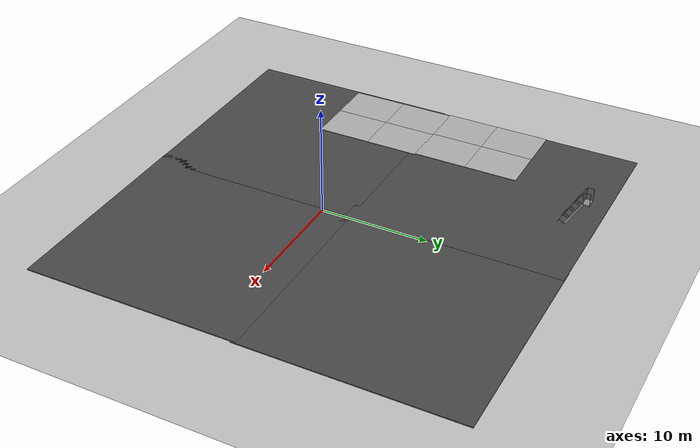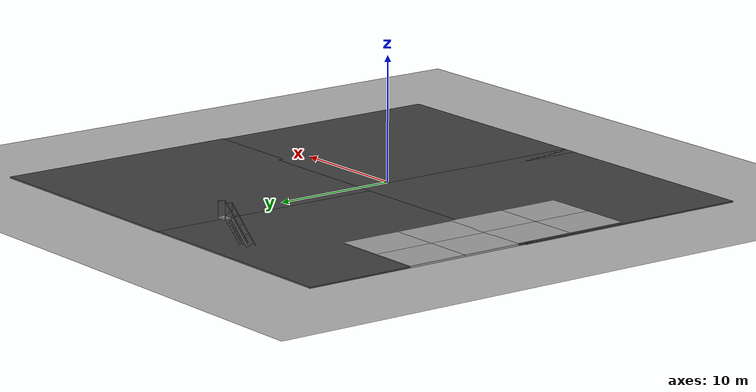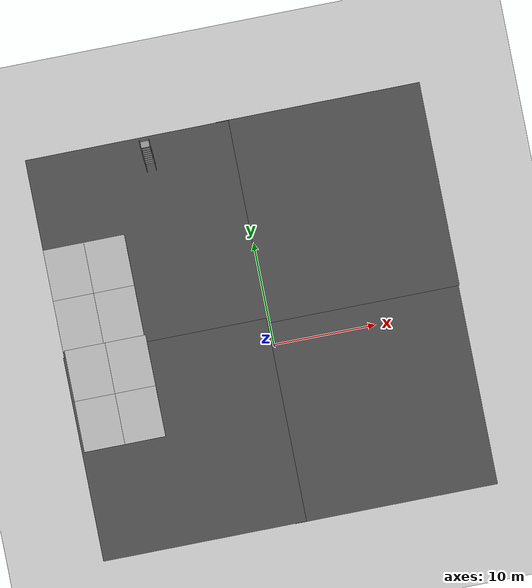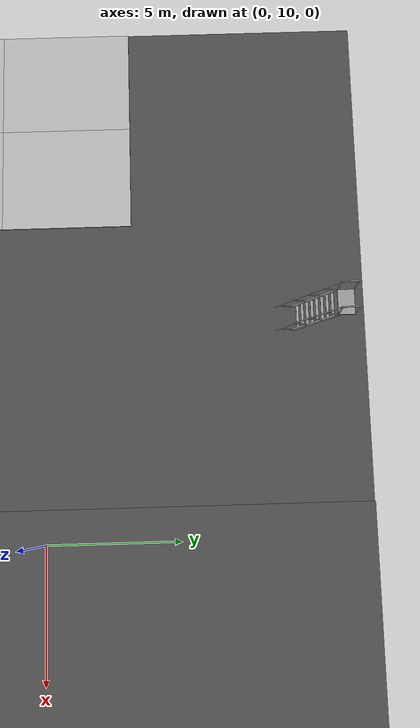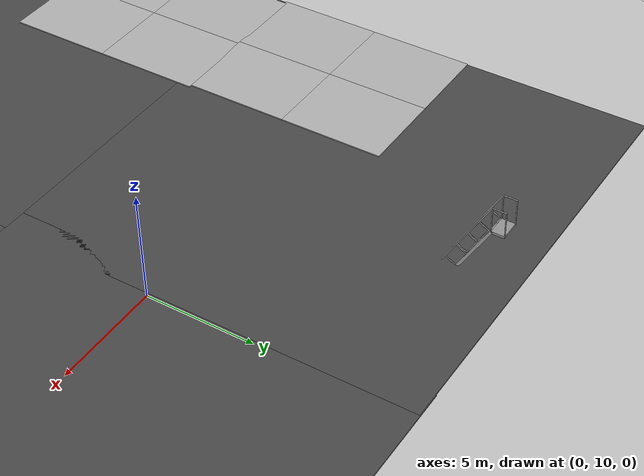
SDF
<sdf version="1.7">
 <world name="default">
  <model name="ground_plane">
   <static>1</static>
   <link name="link">
    <collision name="collision">
     <geometry><plane><normal>0 0 1</normal><size>100 100</size></plane></geometry>
     <surface><friction><ode><mu>100</mu><mu2>50</mu2></ode></friction></surface>
    </collision>
    <visual name="visual">
     <cast_shadows>0</cast_shadows>
     <geometry><plane><normal>0 0 1</normal><size>100 100</size></plane></geometry>
     <material>
      <script><uri>file://media/materials/scripts/gazebo.material</uri><name>Gazebo/Grey</name></script>
     </material>
    </visual>
   </link>
  </model>
  <model name="asphalt_plane">
   <static>1</static>
   <link name="link">
    <collision name="collision">
     <geometry><box><size>20 20 0.1</size></box></geometry>
     <surface><friction><ode><mu>100</mu><mu2>50</mu2></ode></friction></surface>
    </collision>
    <visual name="visual">
     <cast_shadows>0</cast_shadows>
     <geometry><box><size>20 20 0.1</size></box></geometry>
     <material>
      <script>
       <uri>model://asphalt_plane/materials/scripts</uri>
       <uri>model://asphalt_plane/materials/textures</uri>
       <name>vrc/asphalt</name>
      </script>
     </material>
    </visual>
   </link>
   <pose>-10.1941 -7.31872 0 0 -0 0</pose>
  </model>
  <model name="asphalt_plane_clone">
   <static>1</static>
   <link name="link">
    <collision name="collision">
     <geometry><box><size>20 20 0.1</size></box></geometry>
     <surface><friction><ode><mu>100</mu><mu2>50</mu2></ode></friction></surface>
    </collision>
    <visual name="visual">
     <cast_shadows>0</cast_shadows>
     <geometry><box><size>20 20 0.1</size></box></geometry>
     <material>
      <script>
       <uri>model://asphalt_plane/materials/scripts</uri>
       <uri>model://asphalt_plane/materials/textures</uri>
       <name>vrc/asphalt</name>
      </script>
     </material>
    </visual>
   </link>
   <pose>-10.1068 12.1463 0 0 -0 0</pose>
  </model>
  <model name="asphalt_plane_clone_clone">
   <static>1</static>
   <link name="link">
    <collision name="collision">
     <geometry><box><size>20 20 0.1</size></box></geometry>
     <surface><friction><ode><mu>100</mu><mu2>50</mu2></ode></friction></surface>
    </collision>
    <visual name="visual">
     <cast_shadows>0</cast_shadows>
     <geometry><box><size>20 20 0.1</size></box></geometry>
     <material>
      <script>
       <uri>model://asphalt_plane/materials/scripts</uri>
       <uri>model://asphalt_plane/materials/textures</uri>
       <name>vrc/asphalt</name>
      </script>
     </material>
    </visual>
   </link>
   <pose>8.71597 12.1785 0 0 -0 0</pose>
  </model>
  <model name="asphalt_plane_clone_clone_0">
   <static>1</static>
   <link name="link">
    <collision name="collision">
     <geometry><box><size>20 20 0.1</size></box></geometry>
     <surface><friction><ode><mu>100</mu><mu2>50</mu2></ode></friction></surface>
    </collision>
    <visual name="visual">
     <cast_shadows>0</cast_shadows>
     <geometry><box><size>20 20 0.1</size></box></geometry>
     <material>
      <script>
       <uri>model://asphalt_plane/materials/scripts</uri>
       <uri>model://asphalt_plane/materials/textures</uri>
       <name>vrc/asphalt</name>
      </script>
     </material>
    </visual>
   </link>
   <pose>8.60996 -7.34898 0 0 -0 0</pose>
  </model>
  <model name="mud_box">
   <static>1</static>
   <link name="link">
    <collision name="collision"><geometry><box><size>8 10 0.2</size></box></geometry></collision>
    <visual name="visual_1">
     <pose>-2 2.5 0 0 -0 0</pose>
     <cast_shadows>0</cast_shadows>
     <geometry><box><size>4 5 0.2</size></box></geometry>
     <material>
      <script>
       <uri>model://mud_box/materials/scripts</uri>
       <uri>model://mud_box/materials/textures</uri>
       <name>vrc/mud</name>
      </script>
     </material>
    </visual>
    <visual name="visual_2">
     <pose>2 2.5 0 0 -0 0</pose>
     <cast_shadows>0</cast_shadows>
     <geometry><box><size>4 5 0.2</size></box></geometry>
     <material>
      <script>
       <uri>model://mud_box/materials/scripts</uri>
       <uri>model://mud_box/materials/textures</uri>
       <name>vrc/mud</name>
      </script>
     </material>
    </visual>
    <visual name="visual_3">
     <pose>2 -2.5 0 0 -0 0</pose>
     <cast_shadows>0</cast_shadows>
     <geometry><box><size>4 5 0.2</size></box></geometry>
     <material>
      <script>
       <uri>model://mud_box/materials/scripts</uri>
       <uri>model://mud_box/materials/textures</uri>
       <name>vrc/mud</name>
      </script>
     </material>
    </visual>
    <visual name="visual_4">
     <pose>-2 -2.5 0 0 -0 0</pose>
     <cast_shadows>0</cast_shadows>
     <geometry><box><size>4 5 0.2</size></box></geometry>
     <material>
      <script>
       <uri>model://mud_box/materials/scripts</uri>
       <uri>model://mud_box/materials/textures</uri>
       <name>vrc/mud</name>
      </script>
     </material>
    </visual>
   </link>
   <pose>-15.9643 -1.62647 0 0 -0 0</pose>
  </model>
  <model name="mud_box_clone">
   <static>1</static>
   <link name="link">
    <collision name="collision"><geometry><box><size>8 10 0.2</size></box></geometry></collision>
    <visual name="visual_1">
     <pose>-2 2.5 0 0 -0 0</pose>
     <cast_shadows>0</cast_shadows>
     <geometry><box><size>4 5 0.2</size></box></geometry>
     <material>
      <script>
       <uri>model://mud_box/materials/scripts</uri>
       <uri>model://mud_box/materials/textures</uri>
       <name>vrc/mud</name>
      </script>
     </material>
    </visual>
    <visual name="visual_2">
     <pose>2 2.5 0 0 -0 0</pose>
     <cast_shadows>0</cast_shadows>
     <geometry><box><size>4 5 0.2</size></box></geometry>
     <material>
      <script>
       <uri>model://mud_box/materials/scripts</uri>
       <uri>model://mud_box/materials/textures</uri>
       <name>vrc/mud</name>
      </script>
     </material>
    </visual>
    <visual name="visual_3">
     <pose>2 -2.5 0 0 -0 0</pose>
     <cast_shadows>0</cast_shadows>
     <geometry><box><size>4 5 0.2</size></box></geometry>
     <material>
      <script>
       <uri>model://mud_box/materials/scripts</uri>
       <uri>model://mud_box/materials/textures</uri>
       <name>vrc/mud</name>
      </script>
     </material>
    </visual>
    <visual name="visual_4">
     <pose>-2 -2.5 0 0 -0 0</pose>
     <cast_shadows>0</cast_shadows>
     <geometry><box><size>4 5 0.2</size></box></geometry>
     <material>
      <script>
       <uri>model://mud_box/materials/scripts</uri>
       <uri>model://mud_box/materials/textures</uri>
       <name>vrc/mud</name>
      </script>
     </material>
    </visual>
   </link>
   <pose>-16.1069 8.28129 0 0 -0 0</pose>
  </model>
  <light name="sun" type="directional">
   <pose>0 0 10 0 -0 0</pose>
   <diffuse>0.8 0.8 0.8 1</diffuse>
   <specular>0.2 0.2 0.2 1</specular>
   <attenuation>
    <range>1000</range>
    <constant>0.9</constant>
    <linear>0.01</linear>
    <quadratic>0.001</quadratic>
   </attenuation>
   <direction>-0.5 0.1 -0.9</direction>
   <spot><inner_angle>0</inner_angle><outer_angle>0</outer_angle><falloff>0</falloff></spot>
  </light>
  <gravity>0 0 -9.8</gravity>
  <magnetic_field>6e-06 2.3e-05 -4.2e-05</magnetic_field>
  <atmosphere type="adiabatic"/>
  <physics name="default_physics" default="0" type="ode">
   <max_step_size>0.001</max_step_size>
   <real_time_factor>1</real_time_factor>
   <real_time_update_rate>1000</real_time_update_rate>
  </physics>
  <scene><ambient>0.4 0.4 0.4 1</ambient><background>0.7 0.7 0.7 1</background><shadows>1</shadows></scene>
  <audio><device>default</device></audio>
  <spherical_coordinates>
   <surface_model>EARTH_WGS84</surface_model>
   <latitude_deg>47.8406</latitude_deg>
   <longitude_deg>10.6199</longitude_deg>
   <elevation>740</elevation>
   <heading_deg>180</heading_deg>
  </spherical_coordinates>
  <model name="ladder_60deg_2rails">
   <static>1</static>
   <link name="step0">
    <pose>0 0.15396 0.266667 0 -0 0</pose>
    <inertial>
     <mass>9.75482</mass>
     <inertia>
      <ixx>0.00957124</ixx>
      <iyy>0.65963</iyy>
      <izz>0.666842</izz>
      <ixy>0</ixy>
      <ixz>0</ixz>
      <iyz>0</iyz>
     </inertia>
    </inertial>
    <collision name="collision"><geometry><box><size>0.9 0.1016 0.0381</size></box></geometry></collision>
    <visual name="visual">
     <geometry><box><size>0.9 0.1016 0.0381</size></box></geometry>
     <material>
      <script><uri>file://media/materials/scripts/gazebo.material</uri><name>Gazebo/Grey</name></script>
     </material>
    </visual>
   </link>
   <link name="step1">
    <pose>0 0.30792 0.533333 0 -0 0</pose>
    <inertial>
     <mass>9.75482</mass>
     <inertia>
      <ixx>0.00957124</ixx>
      <iyy>0.65963</iyy>
      <izz>0.666842</izz>
      <ixy>0</ixy>
      <ixz>0</ixz>
      <iyz>0</iyz>
     </inertia>
    </inertial>
    <collision name="collision"><geometry><box><size>0.9 0.1016 0.0381</size></box></geometry></collision>
    <visual name="visual">
     <geometry><box><size>0.9 0.1016 0.0381</size></box></geometry>
     <material>
      <script><uri>file://media/materials/scripts/gazebo.material</uri><name>Gazebo/Grey</name></script>
     </material>
    </visual>
   </link>
   <link name="step2">
    <pose>0 0.46188 0.8 0 -0 0</pose>
    <inertial>
     <mass>9.75482</mass>
     <inertia>
      <ixx>0.00957124</ixx>
      <iyy>0.65963</iyy>
      <izz>0.666842</izz>
      <ixy>0</ixy>
      <ixz>0</ixz>
      <iyz>0</iyz>
     </inertia>
    </inertial>
    <collision name="collision"><geometry><box><size>0.9 0.1016 0.0381</size></box></geometry></collision>
    <visual name="visual">
     <geometry><box><size>0.9 0.1016 0.0381</size></box></geometry>
     <material>
      <script><uri>file://media/materials/scripts/gazebo.material</uri><name>Gazebo/Grey</name></script>
     </material>
    </visual>
   </link>
   <link name="step3">
    <pose>0 0.61584 1.06667 0 -0 0</pose>
    <inertial>
     <mass>9.75482</mass>
     <inertia>
      <ixx>0.00957124</ixx>
      <iyy>0.65963</iyy>
      <izz>0.666842</izz>
      <ixy>0</ixy>
      <ixz>0</ixz>
      <iyz>0</iyz>
     </inertia>
    </inertial>
    <collision name="collision"><geometry><box><size>0.9 0.1016 0.0381</size></box></geometry></collision>
    <visual name="visual">
     <geometry><box><size>0.9 0.1016 0.0381</size></box></geometry>
     <material>
      <script><uri>file://media/materials/scripts/gazebo.material</uri><name>Gazebo/Grey</name></script>
     </material>
    </visual>
   </link>
   <link name="step4">
    <pose>0 0.7698 1.33333 0 -0 0</pose>
    <inertial>
     <mass>9.75482</mass>
     <inertia>
      <ixx>0.00957124</ixx>
      <iyy>0.65963</iyy>
      <izz>0.666842</izz>
      <ixy>0</ixy>
      <ixz>0</ixz>
      <iyz>0</iyz>
     </inertia>
    </inertial>
    <collision name="collision"><geometry><box><size>0.9 0.1016 0.0381</size></box></geometry></collision>
    <visual name="visual">
     <geometry><box><size>0.9 0.1016 0.0381</size></box></geometry>
     <material>
      <script><uri>file://media/materials/scripts/gazebo.material</uri><name>Gazebo/Grey</name></script>
     </material>
    </visual>
   </link>
   <link name="step5">
    <pose>0 0.92376 1.6 0 -0 0</pose>
    <inertial>
     <mass>9.75482</mass>
     <inertia>
      <ixx>0.00957124</ixx>
      <iyy>0.65963</iyy>
      <izz>0.666842</izz>
      <ixy>0</ixy>
      <ixz>0</ixz>
      <iyz>0</iyz>
     </inertia>
    </inertial>
    <collision name="collision"><geometry><box><size>0.9 0.1016 0.0381</size></box></geometry></collision>
    <visual name="visual">
     <geometry><box><size>0.9 0.1016 0.0381</size></box></geometry>
     <material>
      <script><uri>file://media/materials/scripts/gazebo.material</uri><name>Gazebo/Grey</name></script>
     </material>
    </visual>
   </link>
   <link name="step6">
    <pose>0 1.07772 1.86667 0 -0 0</pose>
    <inertial>
     <mass>9.75482</mass>
     <inertia>
      <ixx>0.00957124</ixx>
      <iyy>0.65963</iyy>
      <izz>0.666842</izz>
      <ixy>0</ixy>
      <ixz>0</ixz>
      <iyz>0</iyz>
     </inertia>
    </inertial>
    <collision name="collision"><geometry><box><size>0.9 0.1016 0.0381</size></box></geometry></collision>
    <visual name="visual">
     <geometry><box><size>0.9 0.1016 0.0381</size></box></geometry>
     <material>
      <script><uri>file://media/materials/scripts/gazebo.material</uri><name>Gazebo/Grey</name></script>
     </material>
    </visual>
   </link>
   <link name="step7">
    <pose>0 1.23168 2.13333 0 -0 0</pose>
    <inertial>
     <mass>9.75482</mass>
     <inertia>
      <ixx>0.00957124</ixx>
      <iyy>0.65963</iyy>
      <izz>0.666842</izz>
      <ixy>0</ixy>
      <ixz>0</ixz>
      <iyz>0</iyz>
     </inertia>
    </inertial>
    <collision name="collision"><geometry><box><size>0.9 0.1016 0.0381</size></box></geometry></collision>
    <visual name="visual">
     <geometry><box><size>0.9 0.1016 0.0381</size></box></geometry>
     <material>
      <script><uri>file://media/materials/scripts/gazebo.material</uri><name>Gazebo/Grey</name></script>
     </material>
    </visual>
   </link>
   <link name="landing">
    <pose>0 1.68564 2.4 0 -0 0</pose>
    <inertial>
     <mass>57.6072</mass>
     <inertia><ixx>1.73518</ixx><iyy>3.89545</iyy><izz>5.6167</izz><ixy>0</ixy><ixz>0</ixz><iyz>0</iyz></inertia>
    </inertial>
    <collision name="collision"><geometry><box><size>0.9 0.6 0.1016</size></box></geometry></collision>
    <visual name="visual">
     <geometry><box><size>0.9 0.6 0.1016</size></box></geometry>
     <material>
      <script><uri>file://media/materials/scripts/gazebo.material</uri><name>Gazebo/Grey</name></script>
     </material>
    </visual>
   </link>
   <link name="left_side_wall">
    <pose>-0.45 0.69282 1.2 1.0472 -0 0</pose>
    <collision name="collision"><geometry><box><size>0.0508 2.85128 0.13</size></box></geometry></collision>
    <visual name="visual">
     <geometry><box><size>0.0508 2.85128 0.13</size></box></geometry>
     <material>
      <script><uri>file://media/materials/scripts/gazebo.material</uri><name>Gazebo/Grey</name></script>
     </material>
    </visual>
   </link>
   <link name="right_side_wall">
    <pose>0.45 0.69282 1.2 1.0472 -0 0</pose>
    <collision name="collision"><geometry><box><size>0.0508 2.85128 0.13</size></box></geometry></collision>
    <visual name="visual">
     <geometry><box><size>0.0508 2.85128 0.13</size></box></geometry>
     <material>
      <script><uri>file://media/materials/scripts/gazebo.material</uri><name>Gazebo/Grey</name></script>
     </material>
    </visual>
   </link>
   <link name="left_railing_long">
    <pose>-0.45 0.34282 1.80622 -0.523599 0 0</pose>
    <collision name="collision">
     <geometry><cylinder><radius>0.02413</radius><length>4.17128</length></cylinder></geometry>
    </collision>
    <visual name="visual">
     <geometry><cylinder><radius>0.02413</radius><length>4.17128</length></cylinder></geometry>
     <material>
      <script><uri>file://media/materials/scripts/gazebo.material</uri><name>Gazebo/Grey</name></script>
     </material>
    </visual>
   </link>
   <link name="left_railing_upright0">
    <pose>-0.45 -0.274963 0.15875 1.0472 -0 0</pose>
    <collision name="collision">
     <geometry><cylinder><radius>0.02413</radius><length>0.541218</length></cylinder></geometry>
    </collision>
    <visual name="visual">
     <geometry><cylinder><radius>0.02413</radius><length>0.541218</length></cylinder></geometry>
     <material>
      <script><uri>file://media/materials/scripts/gazebo.material</uri><name>Gazebo/Grey</name></script>
     </material>
    </visual>
   </link>
   <link name="left_railing_upright1">
    <pose>-0.45 0.186917 0.95875 1.0472 -0 0</pose>
    <collision name="collision">
     <geometry><cylinder><radius>0.02413</radius><length>0.541218</length></cylinder></geometry>
    </collision>
    <visual name="visual">
     <geometry><cylinder><radius>0.02413</radius><length>0.541218</length></cylinder></geometry>
     <material>
      <script><uri>file://media/materials/scripts/gazebo.material</uri><name>Gazebo/Grey</name></script>
     </material>
    </visual>
   </link>
   <link name="left_railing_upright2">
    <pose>-0.45 0.648797 1.75875 1.0472 -0 0</pose>
    <collision name="collision">
     <geometry><cylinder><radius>0.02413</radius><length>0.541218</length></cylinder></geometry>
    </collision>
    <visual name="visual">
     <geometry><cylinder><radius>0.02413</radius><length>0.541218</length></cylinder></geometry>
     <material>
      <script><uri>file://media/materials/scripts/gazebo.material</uri><name>Gazebo/Grey</name></script>
     </material>
    </visual>
   </link>
   <link name="left_railing_upright3">
    <pose>-0.45 1.11068 2.55875 1.0472 -0 0</pose>
    <collision name="collision">
     <geometry><cylinder><radius>0.02413</radius><length>0.541218</length></cylinder></geometry>
    </collision>
    <visual name="visual">
     <geometry><cylinder><radius>0.02413</radius><length>0.541218</length></cylinder></geometry>
     <material>
      <script><uri>file://media/materials/scripts/gazebo.material</uri><name>Gazebo/Grey</name></script>
     </material>
    </visual>
   </link>
   <link name="left_railing_landing_top">
    <pose>-0.45 1.68564 3.61244 1.5708 -0 0</pose>
    <collision name="collision">
     <geometry><cylinder><radius>0.02413</radius><length>0.64826</length></cylinder></geometry>
    </collision>
    <visual name="visual">
     <geometry><cylinder><radius>0.02413</radius><length>0.64826</length></cylinder></geometry>
     <material>
      <script><uri>file://media/materials/scripts/gazebo.material</uri><name>Gazebo/Grey</name></script>
     </material>
    </visual>
   </link>
   <link name="left_railing_landing_upright_0">
    <pose>-0.45 1.38564 3.00622 0 -0 0</pose>
    <collision name="collision">
     <geometry><cylinder><radius>0.02413</radius><length>1.21244</length></cylinder></geometry>
    </collision>
    <visual name="visual">
     <geometry><cylinder><radius>0.02413</radius><length>1.21244</length></cylinder></geometry>
     <material>
      <script><uri>file://media/materials/scripts/gazebo.material</uri><name>Gazebo/Grey</name></script>
     </material>
    </visual>
   </link>
   <link name="left_railing_landing_upright_1">
    <pose>-0.45 1.98564 3.00622 0 -0 0</pose>
    <collision name="collision">
     <geometry><cylinder><radius>0.02413</radius><length>1.21244</length></cylinder></geometry>
    </collision>
    <visual name="visual">
     <geometry><cylinder><radius>0.02413</radius><length>1.21244</length></cylinder></geometry>
     <material>
      <script><uri>file://media/materials/scripts/gazebo.material</uri><name>Gazebo/Grey</name></script>
     </material>
    </visual>
   </link>
   <link name="right_railing_long">
    <pose>0.45 0.34282 1.80622 -0.523599 0 0</pose>
    <collision name="collision">
     <geometry><cylinder><radius>0.02413</radius><length>4.17128</length></cylinder></geometry>
    </collision>
    <visual name="visual">
     <geometry><cylinder><radius>0.02413</radius><length>4.17128</length></cylinder></geometry>
     <material>
      <script><uri>file://media/materials/scripts/gazebo.material</uri><name>Gazebo/Grey</name></script>
     </material>
    </visual>
   </link>
   <link name="right_railing_upright0">
    <pose>0.45 -0.274963 0.15875 1.0472 -0 0</pose>
    <collision name="collision">
     <geometry><cylinder><radius>0.02413</radius><length>0.541218</length></cylinder></geometry>
    </collision>
    <visual name="visual">
     <geometry><cylinder><radius>0.02413</radius><length>0.541218</length></cylinder></geometry>
     <material>
      <script><uri>file://media/materials/scripts/gazebo.material</uri><name>Gazebo/Grey</name></script>
     </material>
    </visual>
   </link>
   <link name="right_railing_upright1">
    <pose>0.45 0.186917 0.95875 1.0472 -0 0</pose>
    <collision name="collision">
     <geometry><cylinder><radius>0.02413</radius><length>0.541218</length></cylinder></geometry>
    </collision>
    <visual name="visual">
     <geometry><cylinder><radius>0.02413</radius><length>0.541218</length></cylinder></geometry>
     <material>
      <script><uri>file://media/materials/scripts/gazebo.material</uri><name>Gazebo/Grey</name></script>
     </material>
    </visual>
   </link>
   <link name="right_railing_upright2">
    <pose>0.45 0.648797 1.75875 1.0472 -0 0</pose>
    <collision name="collision">
     <geometry><cylinder><radius>0.02413</radius><length>0.541218</length></cylinder></geometry>
    </collision>
    <visual name="visual">
     <geometry><cylinder><radius>0.02413</radius><length>0.541218</length></cylinder></geometry>
     <material>
      <script><uri>file://media/materials/scripts/gazebo.material</uri><name>Gazebo/Grey</name></script>
     </material>
    </visual>
   </link>
   <link name="right_railing_upright3">
    <pose>0.45 1.11068 2.55875 1.0472 -0 0</pose>
    <collision name="collision">
     <geometry><cylinder><radius>0.02413</radius><length>0.541218</length></cylinder></geometry>
    </collision>
    <visual name="visual">
     <geometry><cylinder><radius>0.02413</radius><length>0.541218</length></cylinder></geometry>
     <material>
      <script><uri>file://media/materials/scripts/gazebo.material</uri><name>Gazebo/Grey</name></script>
     </material>
    </visual>
   </link>
   <link name="right_railing_landing_top">
    <pose>0.45 1.68564 3.61244 1.5708 -0 0</pose>
    <collision name="collision">
     <geometry><cylinder><radius>0.02413</radius><length>0.64826</length></cylinder></geometry>
    </collision>
    <visual name="visual">
     <geometry><cylinder><radius>0.02413</radius><length>0.64826</length></cylinder></geometry>
     <material>
      <script><uri>file://media/materials/scripts/gazebo.material</uri><name>Gazebo/Grey</name></script>
     </material>
    </visual>
   </link>
   <link name="right_railing_landing_upright_0">
    <pose>0.45 1.38564 3.00622 0 -0 0</pose>
    <collision name="collision">
     <geometry><cylinder><radius>0.02413</radius><length>1.21244</length></cylinder></geometry>
    </collision>
    <visual name="visual">
     <geometry><cylinder><radius>0.02413</radius><length>1.21244</length></cylinder></geometry>
     <material>
      <script><uri>file://media/materials/scripts/gazebo.material</uri><name>Gazebo/Grey</name></script>
     </material>
    </visual>
   </link>
   <link name="right_railing_landing_upright_1">
    <pose>0.45 1.98564 3.00622 0 -0 0</pose>
    <collision name="collision">
     <geometry><cylinder><radius>0.02413</radius><length>1.21244</length></cylinder></geometry>
    </collision>
    <visual name="visual">
     <geometry><cylinder><radius>0.02413</radius><length>1.21244</length></cylinder></geometry>
     <material>
      <script><uri>file://media/materials/scripts/gazebo.material</uri><name>Gazebo/Grey</name></script>
     </material>
    </visual>
   </link>
   <pose>-8.28469 19.4224 0 0 -0 0</pose>
  </model>
 </world>
</sdf>
